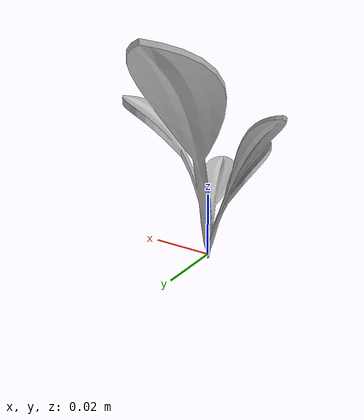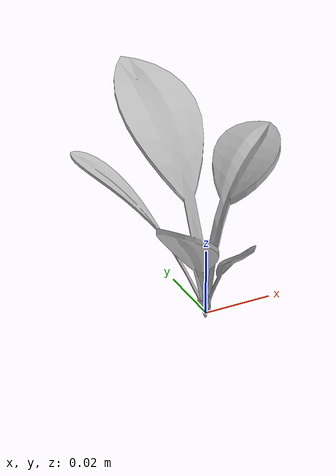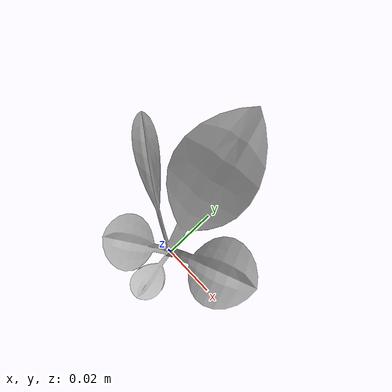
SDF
<sdf version="1.6">
  <model name="sugar_beet_40">
    <static>true</static>
    <link name="body">
      <visual name="visual">
        <geometry>
          <mesh>
            <uri>file:///sugar_beet_40/media/sugar_beet.dae</uri>
          </mesh>
        </geometry>
      </visual>
    </link>
  </model>
</sdf>
